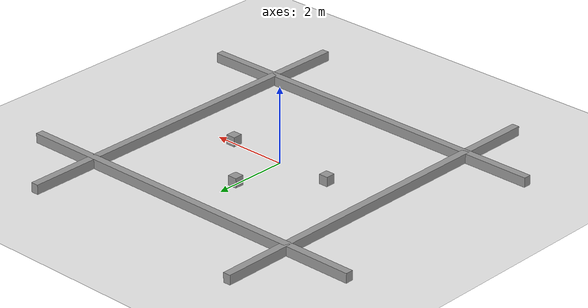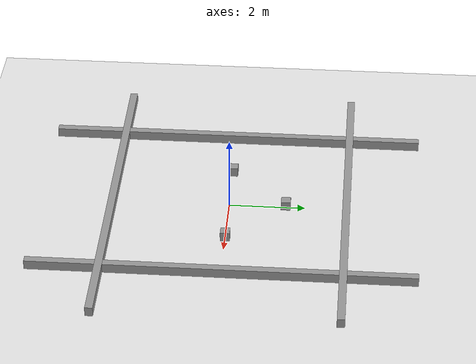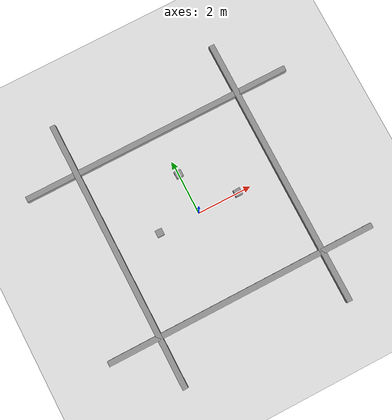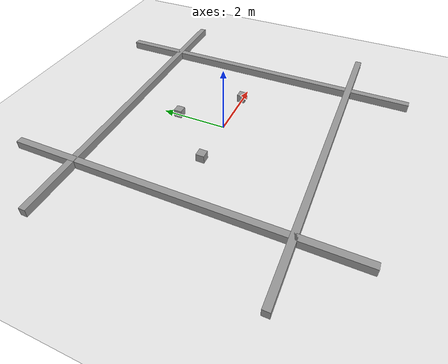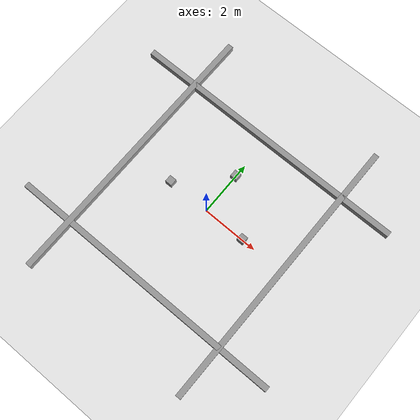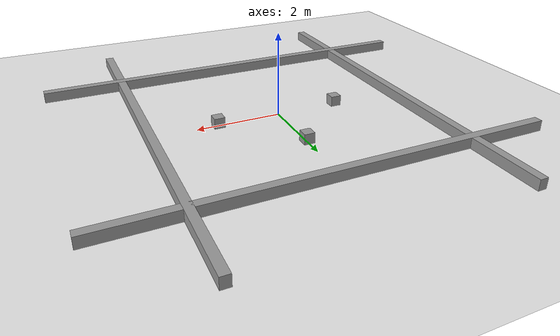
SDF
<sdf version="1.7">
 <world name="default">
  <light name="sun" type="directional">
   <pose>0 0 10 0 -0 0</pose>
   <diffuse>0.8 0.8 0.8 1</diffuse>
   <specular>0.1 0.1 0.1 1</specular>
   <attenuation>
    <range>1000</range>
    <constant>0.9</constant>
    <linear>0.01</linear>
    <quadratic>0.001</quadratic>
   </attenuation>
   <direction>-0.5 0.5 -1</direction>
  </light>
  <model name="ground_plane">
   <static>1</static>
   <link name="link">
    <collision name="collision">
     <geometry><plane><normal>0 0 1</normal><size>100 100</size></plane></geometry>
     <surface><friction><ode><mu>1</mu><mu2>1</mu2></ode></friction></surface>
    </collision>
    <visual name="visual">
     <cast_shadows>0</cast_shadows>
     <geometry><plane><normal>0 0 1</normal><size>100 100</size></plane></geometry>
     <material>
      <script><uri>file://media/materials/scripts/gazebo.material</uri><name>Gazebo/White</name></script>
     </material>
    </visual>
   </link>
  </model>
  <gravity>0 0 -9.8</gravity>
  <magnetic_field>6e-06 2.3e-05 -4.2e-05</magnetic_field>
  <atmosphere type="adiabatic"/>
  <physics name="default_physics" default="0" type="bullet">
   <max_step_size>0.001</max_step_size>
   <real_time_factor>1</real_time_factor>
   <real_time_update_rate>1000</real_time_update_rate>
  </physics>
  <scene><ambient>0.4 0.4 0.4 1</ambient><background>0.7 0.7 0.7 1</background><shadows>1</shadows></scene>
  <spherical_coordinates>
   <surface_model>EARTH_WGS84</surface_model>
   <latitude_deg>0</latitude_deg>
   <longitude_deg>0</longitude_deg>
   <elevation>0</elevation>
   <heading_deg>0</heading_deg>
  </spherical_coordinates>
  <model name="barrier_0">
   <pose>-1.5 0 0 0 0 0</pose>
   <include><name>barrier_0</name><uri>model://grey_barrier</uri></include>
  </model>
  <model name="barrier_1">
   <pose>1.5 0 0 0 0 0</pose>
   <include><name>barrier_1</name><uri>model://grey_barrier</uri></include>
  </model>
  <model name="barrier_2">
   <pose>0 1.5 0 0 0 1.57</pose>
   <include><name>barrier_2</name><uri>model://grey_barrier</uri></include>
  </model>
  <model name="wall_0">
   <pose>0 3.1 0 0 0 0</pose>
   <include><name>wall_0</name><uri>model://grey_wall_10</uri></include>
  </model>
  <model name="wall_1">
   <pose>0 -3.1 0 0 0 0</pose>
   <include><name>wall_1</name><uri>model://grey_wall_10</uri></include>
  </model>
  <model name="wall_2">
   <pose>-3.1 0 0 0 0 1.57</pose>
   <include><name>wall_2</name><uri>model://grey_wall_10</uri></include>
  </model>
  <model name="wall_3">
   <pose>3.1 0 0 0 0 1.57</pose>
   <include><name>wall_3</name><uri>model://grey_wall_10</uri></include>
  </model>
 </world>
</sdf>

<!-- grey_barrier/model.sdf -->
<sdf version="1.5">
  <model name="grey_wall">
    <static>true</static>
    <link name="link">
      <pose>0 0 0.125 0 0 1.57</pose>
      <collision name="collision">
        <geometry>
          <box>
            <size>0.25 0.25 0.25</size>
          </box>
        </geometry>
      </collision>
      <visual name="visual">
        <cast_shadows>false</cast_shadows>
        <geometry>
          <box>
            <size>0.25 0.25 0.25</size>
          </box>
        </geometry>
        <material>
          <script>
            <uri>model://grey_wall/materials/scripts</uri>
            <uri>model://grey_wall/materials/textures</uri>
            <name>vrc/grey_wall</name>
          </script>
        </material>
      </visual>
    </link>
  </model>
</sdf>

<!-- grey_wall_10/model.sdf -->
<sdf version="1.5">
  <model name="grey_wall">
    <static>true</static>
    <link name="link">
      <pose>0 0 0.125 0 0 0</pose>
      <collision name="collision">
        <geometry>
          <box>
            <size>10.0 0.2 0.25</size>
          </box>
        </geometry>
      </collision>
      <visual name="visual">
        <cast_shadows>false</cast_shadows>
        <geometry>
          <box>
            <size>10.0 0.2 0.25</size>
          </box>
        </geometry>
        <material>
          <script>
            <uri>model://grey_wall/materials/scripts</uri>
            <uri>model://grey_wall/materials/textures</uri>
            <name>vrc/grey_wall</name>
          </script>
        </material>
      </visual>
    </link>
  </model>
</sdf>
